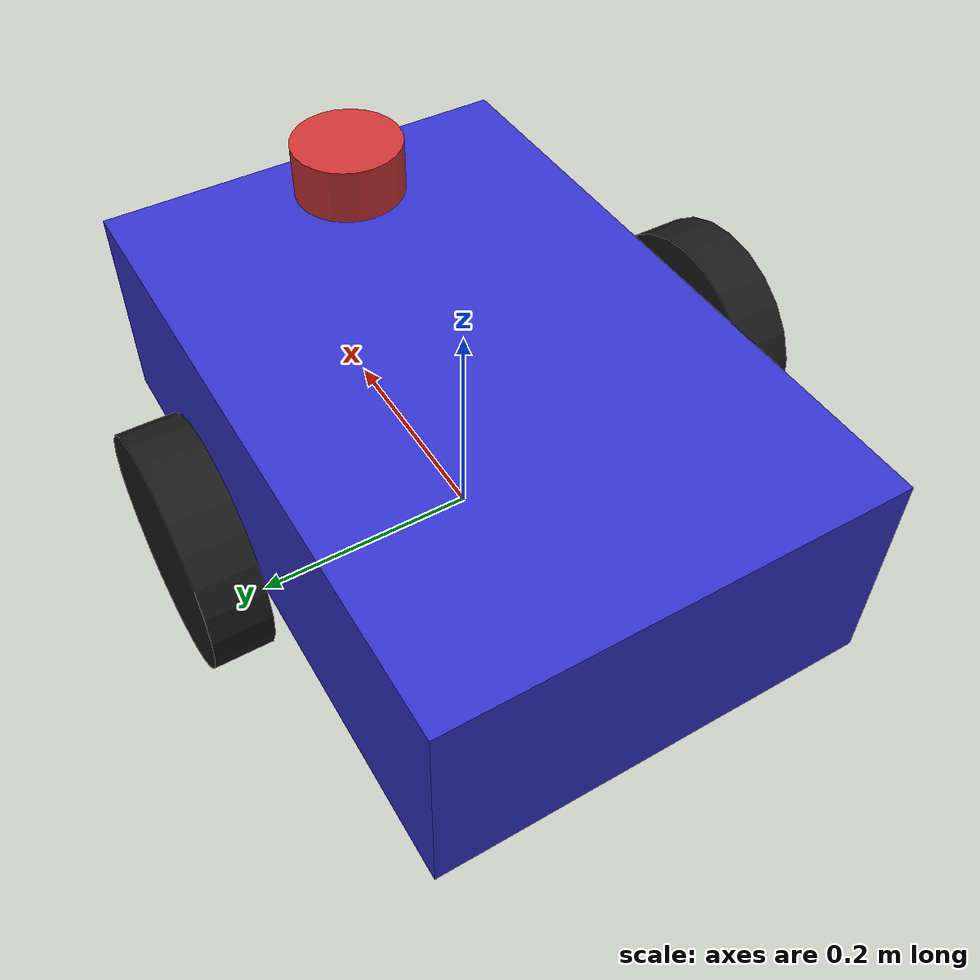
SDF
<?xml version="1.0" ?>
<sdf version="1.8">
  <model name="differential_robot">

    <!-- Base link -->
    <link name="base_link">
      <pose>0 0 0.1 0 0 0</pose>
      <inertial>
        <mass>15.0</mass>
        <inertia>
          <ixx>0.2</ixx>
          <iyy>0.425</iyy>
          <izz>0.5</izz>
        </inertia>
      </inertial>

      <collision name="collision">
        <geometry>
          <box>
            <size>0.6 0.4 0.2</size>
          </box>
        </geometry>
        <surface>
          <contact>
            <ode>
              <kp>1e7</kp>
              <kd>1000.0</kd>
            </ode>
          </contact>
        </surface>
      </collision>

      <visual name="visual">
        <geometry>
          <box>
            <size>0.6 0.4 0.2</size>
          </box>
        </geometry>
        <material>
          <ambient>0.2 0.2 0.8 1</ambient>
          <diffuse>0.2 0.2 0.8 1</diffuse>
        </material>
      </visual>
    </link>

    <!-- Left wheel -->
    <link name="left_wheel">
      <pose>0 0.25 0.1 -1.5708 0 0</pose>
      <inertial>
        <mass>2.0</mass>
        <inertia>
          <ixx>0.01</ixx>
          <iyy>0.01</iyy>
          <izz>0.01</izz>
        </inertia>
      </inertial>

      <collision name="collision">
        <geometry>
          <cylinder>
            <radius>0.1</radius>
            <length>0.05</length>
          </cylinder>
        </geometry>
        <surface>
          <friction>
            <ode>
              <mu>1.2</mu>
              <mu2>0.5</mu2>
              <slip1>0.0</slip1>
              <slip2>0.0</slip2>
            </ode>
          </friction>
          <contact>
            <ode>
              <kp>1e6</kp>
              <kd>100.0</kd>
              <min_depth>0.001</min_depth>
            </ode>
          </contact>
        </surface>
      </collision>

      <visual name="visual">
        <geometry>
          <cylinder>
            <radius>0.1</radius>
            <length>0.05</length>
          </cylinder>
        </geometry>
        <material>
          <ambient>0.1 0.1 0.1 1</ambient>
          <diffuse>0.1 0.1 0.1 1</diffuse>
        </material>
      </visual>
    </link>

    <!-- Right wheel -->
    <link name="right_wheel">
      <pose>0 -0.25 0.1 -1.5708 0 0</pose>
      <inertial>
        <mass>2.0</mass>
        <inertia>
          <ixx>0.01</ixx>
          <iyy>0.01</iyy>
          <izz>0.01</izz>
        </inertia>
      </inertial>

      <collision name="collision">
        <geometry>
          <cylinder>
            <radius>0.1</radius>
            <length>0.05</length>
          </cylinder>
        </geometry>
        <surface>
          <friction>
            <ode>
              <mu>1.2</mu>
              <mu2>0.5</mu2>
              <slip1>0.0</slip1>
              <slip2>0.0</slip2>
            </ode>
          </friction>
          <contact>
            <ode>
              <kp>1e6</kp>
              <kd>100.0</kd>
              <min_depth>0.001</min_depth>
            </ode>
          </contact>
        </surface>
      </collision>

      <visual name="visual">
        <geometry>
          <cylinder>
            <radius>0.1</radius>
            <length>0.05</length>
          </cylinder>
        </geometry>
        <material>
          <ambient>0.1 0.1 0.1 1</ambient>
          <diffuse>0.1 0.1 0.1 1</diffuse>
        </material>
      </visual>
    </link>

    <!-- Caster wheel -->
    <link name="caster_wheel">
      <pose>-0.25 0 0.05 0 0 0</pose>
      <inertial>
        <mass>1.0</mass>
        <inertia>
          <ixx>0.001</ixx>
          <iyy>0.001</iyy>
          <izz>0.001</izz>
        </inertia>
      </inertial>

      <collision name="collision">
        <geometry>
          <sphere>
            <radius>0.05</radius>
          </sphere>
        </geometry>
        <surface>
          <friction>
            <ode>
              <mu>0.01</mu>
              <mu2>0.01</mu2>
              <slip1>1.0</slip1>
              <slip2>1.0</slip2>
            </ode>
          </friction>
          <contact>
            <ode>
              <kp>1e6</kp>
              <kd>100.0</kd>
              <min_depth>0.001</min_depth>
            </ode>
          </contact>
        </surface>
      </collision>

      <visual name="visual">
        <geometry>
          <sphere>
            <radius>0.05</radius>
          </sphere>
        </geometry>
        <material>
          <ambient>0.5 0.5 0.5 1</ambient>
          <diffuse>0.5 0.5 0.5 1</diffuse>
        </material>
      </visual>
    </link>

    <!-- Lidar -->
    <link name="lidar_link">
      <pose>0.2 0 0.25 0 0 0</pose>
      <inertial>
        <mass>0.1</mass>
        <inertia>
          <ixx>0.0001</ixx>
          <iyy>0.0001</iyy>
          <izz>0.0001</izz>
        </inertia>
      </inertial>

      <collision name="collision">
        <geometry>
          <cylinder>
            <radius>0.05</radius>
            <length>0.05</length>
          </cylinder>
        </geometry>
      </collision>

      <visual name="visual">
        <geometry>
          <cylinder>
            <radius>0.05</radius>
            <length>0.05</length>
          </cylinder>
        </geometry>
        <material>
          <ambient>0.8 0.2 0.2 1</ambient>
          <diffuse>0.8 0.2 0.2 1</diffuse>
        </material>
      </visual>

      <sensor name="lidar" type="gpu_lidar">
        <topic>/scan</topic>
        <update_rate>10</update_rate>
        <lidar>
          <scan>
            <horizontal>
              <samples>360</samples>
              <resolution>1.0</resolution>
              <min_angle>-3.14159</min_angle>
              <max_angle>3.14159</max_angle>
            </horizontal>
          </scan>
          <range>
            <min>0.12</min>
            <max>10.0</max>
            <resolution>0.01</resolution>
          </range>
          <noise>
            <type>gaussian</type>
            <mean>0.0</mean>
            <stddev>0.01</stddev>
          </noise>
        </lidar>
        <always_on>1</always_on>
        <visualize>true</visualize>
      </sensor>
    </link>

    <!-- Joints -->
    <joint name="left_wheel_joint" type="revolute">
      <parent>base_link</parent>
      <child>left_wheel</child>
      <axis>
        <xyz>0 0 1</xyz>
        <limit>
          <lower>-1e16</lower>
          <upper>1e16</upper>
        </limit>
      </axis>
    </joint>

    <joint name="right_wheel_joint" type="revolute">
      <parent>base_link</parent>
      <child>right_wheel</child>
      <axis>
        <xyz>0 0 1</xyz>
        <limit>
          <lower>-1e16</lower>
          <upper>1e16</upper>
        </limit>
      </axis>
    </joint>

    <joint name="caster_wheel_joint" type="fixed">
      <parent>base_link</parent>
      <child>caster_wheel</child>
    </joint>

    <joint name="lidar_joint" type="fixed">
      <parent>base_link</parent>
      <child>lidar_link</child>
    </joint>

    <!-- Differential drive plugin -->
    <plugin
      filename="gz-sim-diff-drive-system"
      name="gz::sim::systems::DiffDrive">
      <left_joint>left_wheel_joint</left_joint>
      <right_joint>right_wheel_joint</right_joint>
      <wheel_separation>0.5</wheel_separation>
      <wheel_radius>0.1</wheel_radius>
      <odom_publish_frequency>50</odom_publish_frequency>
      <max_linear_acceleration>1.0</max_linear_acceleration>
      <min_linear_acceleration>-1.0</min_linear_acceleration>
      <max_angular_acceleration>2.0</max_angular_acceleration>
      <min_angular_acceleration>-2.0</min_angular_acceleration>
      <max_linear_velocity>0.5</max_linear_velocity>
      <min_linear_velocity>-0.5</min_linear_velocity>
      <max_angular_velocity>1.0</max_angular_velocity>
      <min_angular_velocity>-1.0</min_angular_velocity>
      <!-- 절대 경로로 토픽 지정 (네임스페이스 방지) -->
      <topic>/cmd_vel</topic>
      <odom_topic>/odom</odom_topic>
      <tf_topic>/tf</tf_topic>
      <frame_id>odom</frame_id>
      <child_frame_id>base_link</child_frame_id>
    </plugin>

    <!-- Joint state publisher for wheel joints -->
    <plugin
      filename="gz-sim-joint-state-publisher-system"
      name="gz::sim::systems::JointStatePublisher">
      <joint_name>left_wheel_joint</joint_name>
      <joint_name>right_wheel_joint</joint_name>
      <update_rate>50</update_rate>
    </plugin>

  </model>
</sdf>
